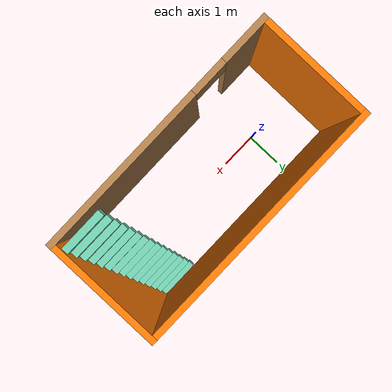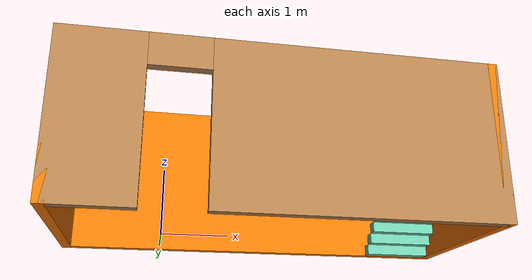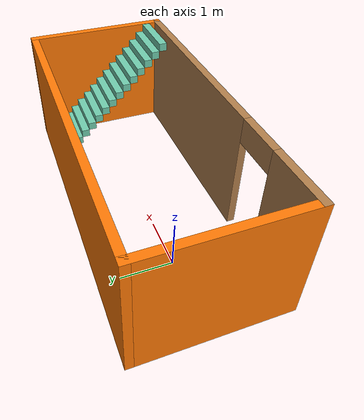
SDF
<?xml version='1.0'?>
<sdf version='1.7'>
  <model name='Basic_Home'>
    <pose>1.655 -0.065 0 0 -0 0</pose>
    <link name='Stairs_0'>
      <visual name='Stairs_0_Visual_0'>
        <pose>2.53532 1.23106 0.083333 0 -0 0</pose>
        <geometry>
          <box>
            <size>1.09258 0.16809 0.166667</size>
          </box>
        </geometry>
        <material>
          <script>
            <uri>file://media/materials/scripts/gazebo.material</uri>
            <name>Gazebo/Grey</name>
          </script>
          <ambient>0.435294 0.796078 0.67451 1</ambient>
        </material>
        <meta>
          <layer>0</layer>
        </meta>
      </visual>
      <collision name='Stairs_0_Collision_0'>
        <geometry>
          <box>
            <size>1.09258 0.16809 0.166667</size>
          </box>
        </geometry>
        <pose>2.53532 1.23106 0.083333 0 -0 0</pose>
      </collision>
      <visual name='Stairs_0_Visual_1'>
        <pose>2.53532 1.06297 0.25 0 -0 0</pose>
        <geometry>
          <box>
            <size>1.09258 0.16809 0.166667</size>
          </box>
        </geometry>
        <material>
          <script>
            <uri>file://media/materials/scripts/gazebo.material</uri>
            <name>Gazebo/Grey</name>
          </script>
          <ambient>0.435294 0.796078 0.67451 1</ambient>
        </material>
        <meta>
          <layer>0</layer>
        </meta>
      </visual>
      <collision name='Stairs_0_Collision_1'>
        <geometry>
          <box>
            <size>1.09258 0.16809 0.166667</size>
          </box>
        </geometry>
        <pose>2.53532 1.06297 0.25 0 -0 0</pose>
      </collision>
      <visual name='Stairs_0_Visual_2'>
        <pose>2.53532 0.894876 0.416667 0 -0 0</pose>
        <geometry>
          <box>
            <size>1.09258 0.16809 0.166667</size>
          </box>
        </geometry>
        <material>
          <script>
            <uri>file://media/materials/scripts/gazebo.material</uri>
            <name>Gazebo/Grey</name>
          </script>
          <ambient>0.435294 0.796078 0.67451 1</ambient>
        </material>
        <meta>
          <layer>0</layer>
        </meta>
      </visual>
      <collision name='Stairs_0_Collision_2'>
        <geometry>
          <box>
            <size>1.09258 0.16809 0.166667</size>
          </box>
        </geometry>
        <pose>2.53532 0.894876 0.416667 0 -0 0</pose>
      </collision>
      <visual name='Stairs_0_Visual_3'>
        <pose>2.53532 0.726786 0.583333 0 -0 0</pose>
        <geometry>
          <box>
            <size>1.09258 0.16809 0.166667</size>
          </box>
        </geometry>
        <material>
          <script>
            <uri>file://media/materials/scripts/gazebo.material</uri>
            <name>Gazebo/Grey</name>
          </script>
          <ambient>0.435294 0.796078 0.67451 1</ambient>
        </material>
        <meta>
          <layer>0</layer>
        </meta>
      </visual>
      <collision name='Stairs_0_Collision_3'>
        <geometry>
          <box>
            <size>1.09258 0.16809 0.166667</size>
          </box>
        </geometry>
        <pose>2.53532 0.726786 0.583333 0 -0 0</pose>
      </collision>
      <visual name='Stairs_0_Visual_4'>
        <pose>2.53532 0.558696 0.75 0 -0 0</pose>
        <geometry>
          <box>
            <size>1.09258 0.16809 0.166667</size>
          </box>
        </geometry>
        <material>
          <script>
            <uri>file://media/materials/scripts/gazebo.material</uri>
            <name>Gazebo/Grey</name>
          </script>
          <ambient>0.435294 0.796078 0.67451 1</ambient>
        </material>
        <meta>
          <layer>0</layer>
        </meta>
      </visual>
      <collision name='Stairs_0_Collision_4'>
        <geometry>
          <box>
            <size>1.09258 0.16809 0.166667</size>
          </box>
        </geometry>
        <pose>2.53532 0.558696 0.75 0 -0 0</pose>
      </collision>
      <visual name='Stairs_0_Visual_5'>
        <pose>2.53532 0.390606 0.916667 0 -0 0</pose>
        <geometry>
          <box>
            <size>1.09258 0.16809 0.166667</size>
          </box>
        </geometry>
        <material>
          <script>
            <uri>file://media/materials/scripts/gazebo.material</uri>
            <name>Gazebo/Grey</name>
          </script>
          <ambient>0.435294 0.796078 0.67451 1</ambient>
        </material>
        <meta>
          <layer>0</layer>
        </meta>
      </visual>
      <collision name='Stairs_0_Collision_5'>
        <geometry>
          <box>
            <size>1.09258 0.16809 0.166667</size>
          </box>
        </geometry>
        <pose>2.53532 0.390606 0.916667 0 -0 0</pose>
      </collision>
      <visual name='Stairs_0_Visual_6'>
        <pose>2.53532 0.222516 1.08333 0 -0 0</pose>
        <geometry>
          <box>
            <size>1.09258 0.16809 0.166667</size>
          </box>
        </geometry>
        <material>
          <script>
            <uri>file://media/materials/scripts/gazebo.material</uri>
            <name>Gazebo/Grey</name>
          </script>
          <ambient>0.435294 0.796078 0.67451 1</ambient>
        </material>
        <meta>
          <layer>0</layer>
        </meta>
      </visual>
      <collision name='Stairs_0_Collision_6'>
        <geometry>
          <box>
            <size>1.09258 0.16809 0.166667</size>
          </box>
        </geometry>
        <pose>2.53532 0.222516 1.08333 0 -0 0</pose>
      </collision>
      <visual name='Stairs_0_Visual_7'>
        <pose>2.53532 0.054426 1.25 0 -0 0</pose>
        <geometry>
          <box>
            <size>1.09258 0.16809 0.166667</size>
          </box>
        </geometry>
        <material>
          <script>
            <uri>file://media/materials/scripts/gazebo.material</uri>
            <name>Gazebo/Grey</name>
          </script>
          <ambient>0.435294 0.796078 0.67451 1</ambient>
        </material>
        <meta>
          <layer>0</layer>
        </meta>
      </visual>
      <collision name='Stairs_0_Collision_7'>
        <geometry>
          <box>
            <size>1.09258 0.16809 0.166667</size>
          </box>
        </geometry>
        <pose>2.53532 0.054426 1.25 0 -0 0</pose>
      </collision>
      <visual name='Stairs_0_Visual_8'>
        <pose>2.53532 -0.113664 1.41667 0 -0 0</pose>
        <geometry>
          <box>
            <size>1.09258 0.16809 0.166667</size>
          </box>
        </geometry>
        <material>
          <script>
            <uri>file://media/materials/scripts/gazebo.material</uri>
            <name>Gazebo/Grey</name>
          </script>
          <ambient>0.435294 0.796078 0.67451 1</ambient>
        </material>
        <meta>
          <layer>0</layer>
        </meta>
      </visual>
      <collision name='Stairs_0_Collision_8'>
        <geometry>
          <box>
            <size>1.09258 0.16809 0.166667</size>
          </box>
        </geometry>
        <pose>2.53532 -0.113664 1.41667 0 -0 0</pose>
      </collision>
      <visual name='Stairs_0_Visual_9'>
        <pose>2.53532 -0.281754 1.58333 0 -0 0</pose>
        <geometry>
          <box>
            <size>1.09258 0.16809 0.166667</size>
          </box>
        </geometry>
        <material>
          <script>
            <uri>file://media/materials/scripts/gazebo.material</uri>
            <name>Gazebo/Grey</name>
          </script>
          <ambient>0.435294 0.796078 0.67451 1</ambient>
        </material>
        <meta>
          <layer>0</layer>
        </meta>
      </visual>
      <collision name='Stairs_0_Collision_9'>
        <geometry>
          <box>
            <size>1.09258 0.16809 0.166667</size>
          </box>
        </geometry>
        <pose>2.53532 -0.281754 1.58333 0 -0 0</pose>
      </collision>
      <visual name='Stairs_0_Visual_10'>
        <pose>2.53532 -0.449844 1.75 0 -0 0</pose>
        <geometry>
          <box>
            <size>1.09258 0.16809 0.166667</size>
          </box>
        </geometry>
        <material>
          <script>
            <uri>file://media/materials/scripts/gazebo.material</uri>
            <name>Gazebo/Grey</name>
          </script>
          <ambient>0.435294 0.796078 0.67451 1</ambient>
        </material>
        <meta>
          <layer>0</layer>
        </meta>
      </visual>
      <collision name='Stairs_0_Collision_10'>
        <geometry>
          <box>
            <size>1.09258 0.16809 0.166667</size>
          </box>
        </geometry>
        <pose>2.53532 -0.449844 1.75 0 -0 0</pose>
      </collision>
      <visual name='Stairs_0_Visual_11'>
        <pose>2.53532 -0.617934 1.91667 0 -0 0</pose>
        <geometry>
          <box>
            <size>1.09258 0.16809 0.166667</size>
          </box>
        </geometry>
        <material>
          <script>
            <uri>file://media/materials/scripts/gazebo.material</uri>
            <name>Gazebo/Grey</name>
          </script>
          <ambient>0.435294 0.796078 0.67451 1</ambient>
        </material>
        <meta>
          <layer>0</layer>
        </meta>
      </visual>
      <collision name='Stairs_0_Collision_11'>
        <geometry>
          <box>
            <size>1.09258 0.16809 0.166667</size>
          </box>
        </geometry>
        <pose>2.53532 -0.617934 1.91667 0 -0 0</pose>
      </collision>
      <visual name='Stairs_0_Visual_12'>
        <pose>2.53532 -0.786024 2.08333 0 -0 0</pose>
        <geometry>
          <box>
            <size>1.09258 0.16809 0.166667</size>
          </box>
        </geometry>
        <material>
          <script>
            <uri>file://media/materials/scripts/gazebo.material</uri>
            <name>Gazebo/Grey</name>
          </script>
          <ambient>0.435294 0.796078 0.67451 1</ambient>
        </material>
        <meta>
          <layer>0</layer>
        </meta>
      </visual>
      <collision name='Stairs_0_Collision_12'>
        <geometry>
          <box>
            <size>1.09258 0.16809 0.166667</size>
          </box>
        </geometry>
        <pose>2.53532 -0.786024 2.08333 0 -0 0</pose>
      </collision>
      <visual name='Stairs_0_Visual_13'>
        <pose>2.53532 -0.954114 2.25 0 -0 0</pose>
        <geometry>
          <box>
            <size>1.09258 0.16809 0.166667</size>
          </box>
        </geometry>
        <material>
          <script>
            <uri>file://media/materials/scripts/gazebo.material</uri>
            <name>Gazebo/Grey</name>
          </script>
          <ambient>0.435294 0.796078 0.67451 1</ambient>
        </material>
        <meta>
          <layer>0</layer>
        </meta>
      </visual>
      <collision name='Stairs_0_Collision_13'>
        <geometry>
          <box>
            <size>1.09258 0.16809 0.166667</size>
          </box>
        </geometry>
        <pose>2.53532 -0.954114 2.25 0 -0 0</pose>
      </collision>
      <visual name='Stairs_0_Visual_14'>
        <pose>2.53532 -1.1222 2.41667 0 -0 0</pose>
        <geometry>
          <box>
            <size>1.09258 0.16809 0.166667</size>
          </box>
        </geometry>
        <material>
          <script>
            <uri>file://media/materials/scripts/gazebo.material</uri>
            <name>Gazebo/Grey</name>
          </script>
          <ambient>0.435294 0.796078 0.67451 1</ambient>
        </material>
        <meta>
          <layer>0</layer>
        </meta>
      </visual>
      <collision name='Stairs_0_Collision_14'>
        <geometry>
          <box>
            <size>1.09258 0.16809 0.166667</size>
          </box>
        </geometry>
        <pose>2.53532 -1.1222 2.41667 0 -0 0</pose>
      </collision>
    </link>
    <link name='Wall_0'>
      <pose>-0 -1.425 0 0 -0 0</pose>
      <visual name='Wall_0_Visual_0'>
        <pose>-2.61568 0 1.25 0 -0 0</pose>
        <geometry>
          <box>
            <size>1.26864 0.15 2.5</size>
          </box>
        </geometry>
        <material>
          <script>
            <uri>file://media/materials/scripts/gazebo.material</uri>
            <name>Gazebo/Wood</name>
          </script>
          <ambient>0.996078 0.47451 0.0196078 1</ambient>
        </material>
        <meta>
          <layer>0</layer>
        </meta>
      </visual>
      <collision name='Wall_0_Collision_0'>
        <geometry>
          <box>
            <size>1.26864 0.15 2.5</size>
          </box>
        </geometry>
        <pose>-2.61568 0 1.25 0 -0 0</pose>
      </collision>
      <visual name='Wall_0_Visual_1'>
        <pose>1.08432 0 1.25 0 -0 0</pose>
        <geometry>
          <box>
            <size>4.33136 0.15 2.5</size>
          </box>
        </geometry>
        <material>
          <script>
            <uri>file://media/materials/scripts/gazebo.material</uri>
            <name>Gazebo/Wood</name>
          </script>
          <ambient>0.996078 0.47451 0.0196078 1</ambient>
        </material>
        <meta>
          <layer>0</layer>
        </meta>
      </visual>
      <collision name='Wall_0_Collision_1'>
        <geometry>
          <box>
            <size>4.33136 0.15 2.5</size>
          </box>
        </geometry>
        <pose>1.08432 0 1.25 0 -0 0</pose>
      </collision>
      <visual name='Wall_0_Visual_2'>
        <pose>-1.53136 0 2.25 0 -0 0</pose>
        <geometry>
          <box>
            <size>0.9 0.15 0.5</size>
          </box>
        </geometry>
        <material>
          <script>
            <uri>file://media/materials/scripts/gazebo.material</uri>
            <name>Gazebo/Wood</name>
          </script>
          <ambient>0.996078 0.47451 0.0196078 1</ambient>
        </material>
        <meta>
          <layer>0</layer>
        </meta>
      </visual>
      <collision name='Wall_0_Collision_2'>
        <geometry>
          <box>
            <size>0.9 0.15 0.5</size>
          </box>
        </geometry>
        <pose>-1.53136 0 2.25 0 -0 0</pose>
      </collision>
    </link>
    <link name='Wall_1'>
      <collision name='Wall_1_Collision'>
        <geometry>
          <box>
            <size>3 0.15 2.5</size>
          </box>
        </geometry>
        <pose>0 0 1.25 0 -0 0</pose>
      </collision>
      <visual name='Wall_1_Visual'>
        <pose>0 0 1.25 0 -0 0</pose>
        <geometry>
          <box>
            <size>3 0.15 2.5</size>
          </box>
        </geometry>
        <material>
          <script>
            <uri>file://media/materials/scripts/gazebo.material</uri>
            <name>Gazebo/Grey</name>
          </script>
          <ambient>0.996078 0.47451 0.0196078 1</ambient>
        </material>
        <meta>
          <layer>0</layer>
        </meta>
      </visual>
      <pose>3.175 0 0 0 -0 1.5708</pose>
    </link>
    <link name='Wall_2'>
      <collision name='Wall_2_Collision'>
        <geometry>
          <box>
            <size>6.5 0.15 2.5</size>
          </box>
        </geometry>
        <pose>0 0 1.25 0 -0 0</pose>
      </collision>
      <visual name='Wall_2_Visual'>
        <pose>0 0 1.25 0 -0 0</pose>
        <geometry>
          <box>
            <size>6.5 0.15 2.5</size>
          </box>
        </geometry>
        <material>
          <script>
            <uri>file://media/materials/scripts/gazebo.material</uri>
            <name>Gazebo/Grey</name>
          </script>
          <ambient>0.996078 0.47451 0.0196078 1</ambient>
        </material>
        <meta>
          <layer>0</layer>
        </meta>
      </visual>
      <pose>-0 1.425 0 0 -0 3.14159</pose>
    </link>
    <link name='Wall_3'>
      <collision name='Wall_3_Collision'>
        <geometry>
          <box>
            <size>3 0.15 2.5</size>
          </box>
        </geometry>
        <pose>0 0 1.25 0 -0 0</pose>
      </collision>
      <visual name='Wall_3_Visual'>
        <pose>0 0 1.25 0 -0 0</pose>
        <geometry>
          <box>
            <size>3 0.15 2.5</size>
          </box>
        </geometry>
        <material>
          <script>
            <uri>file://media/materials/scripts/gazebo.material</uri>
            <name>Gazebo/Grey</name>
          </script>
          <ambient>0.996078 0.47451 0.0196078 1</ambient>
        </material>
        <meta>
          <layer>0</layer>
        </meta>
      </visual>
      <pose>-3.175 0 0 0 -0 -1.5708</pose>
    </link>
    <static>1</static>
  </model>
</sdf>
